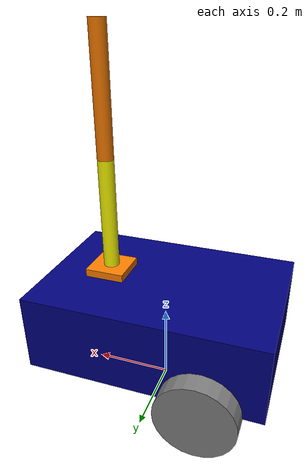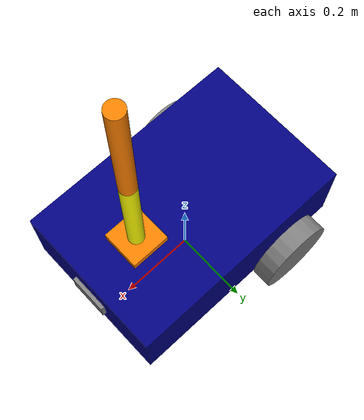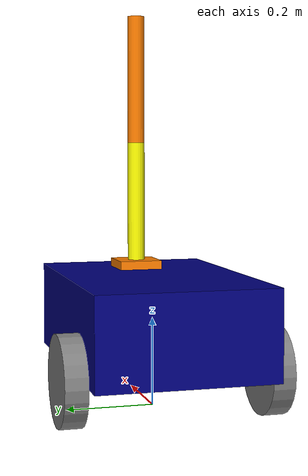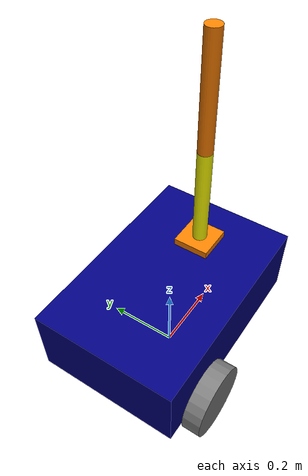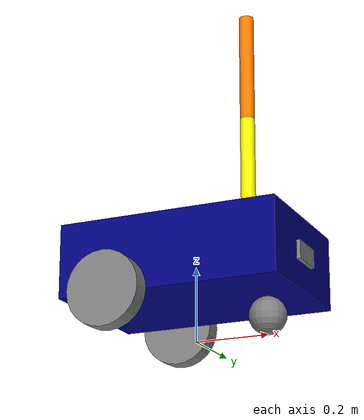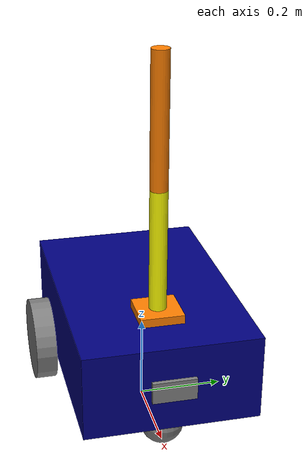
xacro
<?xml version="1.0"?>
<robot name="my_robot" xmlns:xacro ="http://www.ros.org/wiki/xacro">

    <xacro:include filename="common_properties.urdf.xacro"/>
    <xacro:include filename="mobile_base.urdf.xacro"/>
    <xacro:include filename="mobile_base_gazebo.xacro"/>
    <xacro:include filename="camera.urdf.xacro"/>
    <xacro:include filename="arm.urdf.xacro"/>
    <xacro:include filename="arm_gazebo.xacro"/>

    <joint name="mobile_arm_jioint" type="fixed">
        <origin xyz="${base_length / 4.0} 0.0 ${base_height}" rpy="0.0 0.0 0.0"/>
        <parent link="base_link"/>
        <child link="arm_base_link"/>
    </joint>
</robot>

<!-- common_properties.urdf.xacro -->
<robot xmlns:xacro ="http://www.ros.org/wiki/xacro">

    <material name="blue">
        <color rgba="0 0 0.5 1"/>
    </material>

    <material name="grey">
        <color rgba="0.5 0.5 0.5 1"/>
    </material>

    <material name="orange">
        <color rgba="1.0 0.5 0 1" />
    </material>

    <material name="yellow">
        <color rgba="1.0 1.0 0 1" />
    </material>

    <xacro:macro name="box_inertia" params="m l w h xyz rpy" >
        <inertial>
            <origin xyz="${xyz}" rpy="${rpy}"/>
            <mass value="${m}"/>
            <inertia ixx="${(m/12)*(h*h + l*l)}" ixy="0" ixz="0" iyy="${(m/12)*(w*w + l*l)}" iyz="0" izz="${(m/12)*(w*w + h*h)}" />
        </inertial>
    </xacro:macro>

    <xacro:macro name="cylinder_inertia" params="m r h xyz rpy" >
        <inertial>
            <origin xyz="${xyz}" rpy="${rpy}"/>
            <mass value="${m}"/>
            <inertia ixx="${(m/12)*(3*r*r + h*h)}" ixy="0.0" ixz="0.0" iyy="${(m/12)*(3*r*r + h*h)}" iyz="0.0" izz="${(m/2)*(r*r)}"/>
        </inertial>
    </xacro:macro>

    <xacro:macro name="sphere_inertia" params="m r xyz rpy">
        <inertial>
            <origin xyz="${xyz}" rpy="${rpy}"/>
            <mass value="${m}"/>
            <inertia ixx="${((2*m)/5) * (r*r)}" ixy="0.0" ixz="0.0" iyy="${((2*m)/5) * (r*r)}" iyz="0.0" izz="${((2*m)/5) * (r*r)}"/>
        </inertial>

    </xacro:macro>
</robot>

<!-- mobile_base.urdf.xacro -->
<robot xmlns:xacro ="http://www.ros.org/wiki/xacro">

    <xacro:property name="base_length" value="0.6"/>
    <xacro:property name="base_width" value="0.4" />
    <xacro:property name="base_height" value="0.2" />
    <xacro:property name="wheel_radius" value="0.1" />
    <xacro:property name="wheel_width" value="0.05" />

    <link name="base_footprint" />

    <link name="base_link">
        <visual>
            <geometry>
                <box size="${base_length} ${base_width} ${base_height}" />
            </geometry>
            <origin xyz="0 0 ${base_height / 2.0}" rpy="0 0 0" />
            <material name="blue"/>
        </visual>
        <collision>
            <geometry>
                <box size="${base_length} ${base_width} ${base_height}" />
            </geometry>
            <origin xyz="0 0 ${base_height / 2.0}" rpy="0 0 0" />
        </collision>
        <xacro:box_inertia m="5.0" l="${2*base_length}" w="${2*base_width}" h="${2*base_height}" xyz="0 0 ${base_height / 2.0}" rpy="0 0 0"/>
    </link>

    <xacro:macro name="wheel_link" params="prefix">
        <link name="${prefix}_wheel_link">
            <visual>
                <geometry>
                    <cylinder radius="${wheel_radius}" length="${wheel_width}"/>
                </geometry>
                <origin xyz="0 0 0" rpy="${pi / 2.0} 0 0"/>
                <material name="grey"/>
            </visual>
            <collision>
                <geometry>
                    <cylinder radius="${wheel_radius}" length="${wheel_width}"/>
                </geometry>
                <origin xyz="0 0 0" rpy="${pi / 2.0} 0 0"/>
            </collision>
            <xacro:cylinder_inertia m="1.0" r="${2*wheel_radius}" h="${2*wheel_width}" xyz="0 0 0" rpy="${pi / 2.0} 0 0"/>
        </link>
    </xacro:macro>

    <xacro:wheel_link prefix="right"/>
    <xacro:wheel_link prefix="left"/>

    <link name="caster_wheel_link">
        <visual>
            <geometry>
                <sphere radius="${wheel_radius/2.0}"/>
            </geometry>
            <origin xyz="0 0 0" rpy="0 0 0"/>
            <material name="grey">
            </material>
        </visual>
        <collision>
            <geometry>
                <sphere radius="${wheel_radius/2.0}"/>
            </geometry>
            <origin xyz="0 0 0" rpy="0 0 0"/>
        </collision>
        <xacro:sphere_inertia m="0.5" r="${2*wheel_radius/2.0}" xyz="0 0 0" rpy="0 0 0"/>
    </link>

    <joint name="base_joint" type="fixed">
        <parent link="base_footprint" />
        <child link="base_link" />
        <origin xyz="0 0 ${wheel_radius}" rpy="0 0 0"/>
    </joint>

    <joint name="base_right_wheel_joint" type="continuous">
        <origin xyz="${-base_length / 4.0} ${-(wheel_width/2.0 + base_width/2.0)} 0" rpy="0 0 0"/>
        <parent link="base_link"/>
        <child link="right_wheel_link"/>
        <axis xyz="0 1 0"/>
    </joint>

    <joint name="base_left_wheel_joint" type="continuous">
        <origin xyz="${-base_length / 4.0} ${wheel_width/2.0 + base_width/2.0} 0" rpy="0 0 0"/>
        <parent link="base_link"/>
        <child link="left_wheel_link"/>
        <axis xyz="0 1 0"/>
    </joint>

    <joint name="base_caster_wheel_joint" type="fixed">
        <origin xyz="${base_length / 3.0} 0.0 ${-wheel_radius / 2.0}" rpy="0.0 0.0 0.0"/>
        <parent link="base_link"/>
        <child link="caster_wheel_link"/>
    </joint>

</robot>

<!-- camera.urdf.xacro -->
<robot xmlns:xacro ="http://www.ros.org/wiki/xacro">

    <xacro:property name="camera_length" value="0.01"/>
    <xacro:property name="camera_width" value="0.1"/>
    <xacro:property name="camera_height" value="0.05"/>

    <link name="camera_link">
        <visual>
            <geometry>
                <box size="${camera_length} ${camera_width} ${camera_height}"/>
            </geometry>
            <material name="grey"/>
        </visual>
        <collision>
            <geometry>
                <box size="${camera_length} ${camera_width} ${camera_height}"/>
            </geometry>
        </collision>
        <xacro:box_inertia m="0.1" l="${camera_length}" w="${camera_width}" h="${camera_height}" xyz="0 0 0" rpy="0 0 0"/>
    </link>

    <joint name="base_camera_joint" type="fixed">
        <origin xyz="${(base_length + camera_length)/2} 0.0 ${base_height/2.0}" rpy="0.0 0.0 0.0"/>
        <parent link="base_link"/>
        <child link="camera_link"/>
    </joint>

    <gazebo reference="camera_link">
        <material>Gazebo/Black</material>
        <sensor name="camera_sensor" type="camera">
            <pose>0 0 0 0 0 0</pose>
            <visualize>true</visualize>
            <update_rate>10.0</update_rate>
            <plugin name="camera_controller" filename="libgazebo_ros_camera.so">
                <frame_name>camera_link</frame_name>
              </plugin>
        </sensor>
    </gazebo>

</robot>

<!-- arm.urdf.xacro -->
<robot xmlns:xacro ="http://www.ros.org/wiki/xacro">

    <xacro:property name="arm_base_length" value="0.1"/>
    <xacro:property name="arm_base_width" value="0.1" />
    <xacro:property name="arm_base_height" value="0.02" />
    <xacro:property name="arm_base_mass" value="0.5" />

    <xacro:property name="forearm_radius" value="0.02" />
    <xacro:property name="forearm_length" value="0.3" />
    <xacro:property name="forearm_mass" value="0.3" />

    <xacro:property name="hand_radius" value="0.02" />
    <xacro:property name="hand_length" value="0.3" />
    <xacro:property name="hand_mass" value="0.3" />

    <link name="arm_base_link">
        <visual>
            <geometry>
                <box size="${arm_base_length} ${arm_base_width} ${arm_base_height}"/>
            </geometry>
            <origin xyz="0.0 0.0 ${arm_base_height /2}" rpy="0.0 0.0 0.0"/>
            <material name="orange"/>
        </visual>
        <collision>
            <geometry>
                <box size="${arm_base_length} ${arm_base_width} ${arm_base_height}"/>
            </geometry>
            <origin xyz="0.0 0.0 ${arm_base_height /2}" rpy="0.0 0.0 0.0"/>
        </collision>
        <xacro:box_inertia m="${arm_base_mass}" l="${2*arm_base_length}" w="${2*arm_base_width}" h="${2*arm_base_height}" xyz="0.0 0.0 ${arm_base_height /2}" rpy="0 0 0"/>
    </link>

    <link name="forearm_link">
        <visual>
            <geometry>
                <cylinder radius="${forearm_radius}" length="${forearm_length}"/>
            </geometry>
            <origin xyz="0.0 0.0 ${forearm_length /2.0}" rpy="0.0 0.0 0.0"/>
            <material name="yellow"/>
        </visual>

        <collision>
            <geometry>
                <cylinder radius="${forearm_radius}" length="${forearm_length}"/>
            </geometry>
            <origin xyz="0.0 0.0 ${forearm_length /2.0}" rpy="0.0 0.0 0.0"/>
        </collision>
        <xacro:cylinder_inertia m="${forearm_mass}" r="${2*forearm_radius}" h="${2*forearm_length}" xyz="0.0 0.0 ${forearm_length /2.0}" rpy="0 0 0"/>
    </link>

    <link name="hand_link">
        <visual>
            <geometry>
                <cylinder radius="${hand_radius}" length="${hand_length}"/>
            </geometry>
            <origin xyz="0.0 0.0 ${hand_length /2.0}" rpy="0.0 0.0 0.0"/>
            <material name="orange"/>
        </visual>
        <collision>
            <geometry>
                <cylinder radius="${hand_radius}" length="${hand_length}"/>
            </geometry>
            <origin xyz="0.0 0.0 ${hand_length /2.0}" rpy="0.0 0.0 0.0"/>
        </collision>
        <xacro:cylinder_inertia m="${hand_mass}" r="${2*hand_radius}" h="${2*hand_length}" xyz="0.0 0.0 ${hand_length /2.0}" rpy="0 0 0"/>
    </link>

    <joint name="arm_base_forearm_joint" type="revolute">
        <origin xyz="0.0 0.0 0.0" rpy="0.0 0.0 0.0"/>
        <parent link="arm_base_link"/>
        <child link="forearm_link"/>
        <axis xyz="0.0 1 0.0"/>
        <limit lower="0.0" upper="${pi / 2.0}" effort="100" velocity="100"/>
        <dynamics friction="0.05" damping="0.1"/>
    </joint>

    <joint name="forearm_hand_joint" type="revolute">
        <origin xyz="0.0 0.0 ${forearm_length}" rpy="0.0 0.0 0.0"/>
        <parent link="forearm_link"/>
        <child link="hand_link"/>
        <axis xyz="0.0 1 0.0"/>
        <limit lower="0.0" upper="${pi / 2.0}" effort="100" velocity="100"/>
        <dynamics friction="0.05" damping="0.1"/>
    </joint>
</robot>
